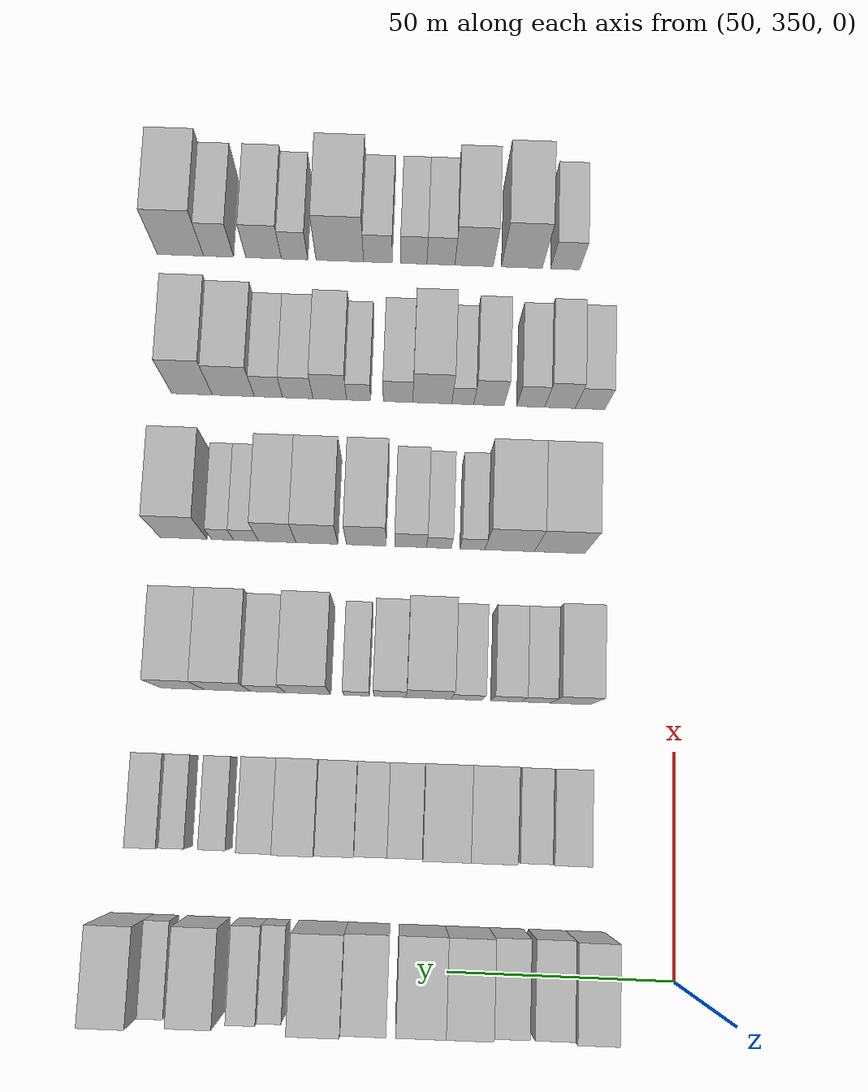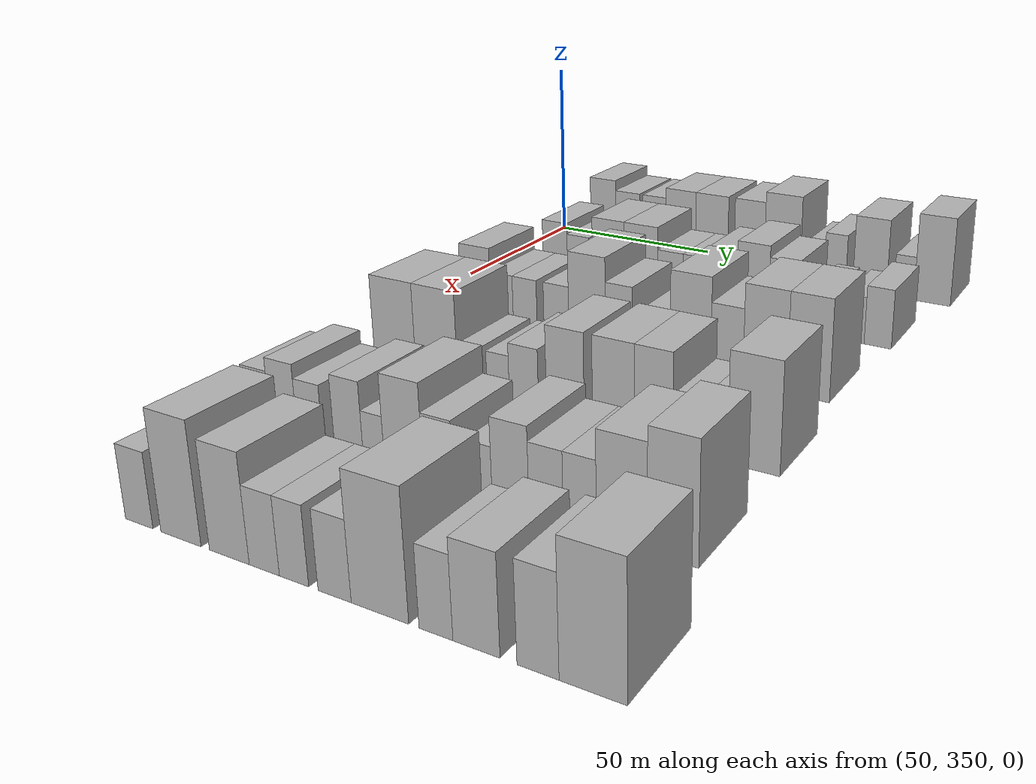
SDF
<sdf version="1.6">
 <world name="default">
  <model name="building_105">
   <static>1</static>
   <pose>50.0000 369.9335 0 0.000000 0.000000 0.000000</pose>
   <link name="link">
    <pose>0 0 10.50 0 0 0</pose>
    <collision name="collision"><geometry><box><size>20.0000 8.6102 21.0000</size></box></geometry></collision>
    <visual name="visual">
     <cast_shadows>0</cast_shadows>
     <geometry><box><size>20.0000 8.6102 21.0000</size></box></geometry>
     <material>
      <script>
       <uri>model://HANNAS_wall/materials/scripts</uri>
       <uri>model://HANNAS_wall/materials/textures</uri>
       <name>vrc/HANNAS_wall</name>
      </script>
     </material>
    </visual>
   </link>
  </model>
  <model name="building_106">
   <static>1</static>
   <pose>50.0000 378.3819 0 0.000000 0.000000 0.000000</pose>
   <link name="link">
    <pose>0 0 9.00 0 0 0</pose>
    <collision name="collision"><geometry><box><size>20.0000 8.2867 18.0000</size></box></geometry></collision>
    <visual name="visual">
     <cast_shadows>0</cast_shadows>
     <geometry><box><size>20.0000 8.2867 18.0000</size></box></geometry>
     <material>
      <script>
       <uri>model://HANNAS_wall/materials/scripts</uri>
       <uri>model://HANNAS_wall/materials/textures</uri>
       <name>vrc/HANNAS_wall</name>
      </script>
     </material>
    </visual>
   </link>
  </model>
  <model name="building_107">
   <static>1</static>
   <pose>50.0000 387.3120 0 0.000000 0.000000 0.000000</pose>
   <link name="link">
    <pose>0 0 9.00 0 0 0</pose>
    <collision name="collision"><geometry><box><size>20.0000 7.5735 18.0000</size></box></geometry></collision>
    <visual name="visual">
     <cast_shadows>0</cast_shadows>
     <geometry><box><size>20.0000 7.5735 18.0000</size></box></geometry>
     <material>
      <script>
       <uri>model://HANNAS_wall/materials/scripts</uri>
       <uri>model://HANNAS_wall/materials/textures</uri>
       <name>vrc/HANNAS_wall</name>
      </script>
     </material>
    </visual>
   </link>
  </model>
  <model name="building_108">
   <static>1</static>
   <pose>50.0000 395.9540 0 0.000000 0.000000 0.000000</pose>
   <link name="link">
    <pose>0 0 10.50 0 0 0</pose>
    <collision name="collision"><geometry><box><size>20.0000 9.7106 21.0000</size></box></geometry></collision>
    <visual name="visual">
     <cast_shadows>0</cast_shadows>
     <geometry><box><size>20.0000 9.7106 21.0000</size></box></geometry>
     <material>
      <script>
       <uri>model://HANNAS_wall/materials/scripts</uri>
       <uri>model://HANNAS_wall/materials/textures</uri>
       <name>vrc/HANNAS_wall</name>
      </script>
     </material>
    </visual>
   </link>
  </model>
  <model name="building_109">
   <static>1</static>
   <pose>50.0000 405.9166 0 0.000000 0.000000 0.000000</pose>
   <link name="link">
    <pose>0 0 10.50 0 0 0</pose>
    <collision name="collision"><geometry><box><size>20.0000 10.2146 21.0000</size></box></geometry></collision>
    <visual name="visual">
     <cast_shadows>0</cast_shadows>
     <geometry><box><size>20.0000 10.2146 21.0000</size></box></geometry>
     <material>
      <script>
       <uri>model://HANNAS_wall/materials/scripts</uri>
       <uri>model://HANNAS_wall/materials/textures</uri>
       <name>vrc/HANNAS_wall</name>
      </script>
     </material>
    </visual>
   </link>
  </model>
  <model name="building_110">
   <static>1</static>
   <pose>50.0000 417.6677 0 0.000000 0.000000 0.000000</pose>
   <link name="link">
    <pose>0 0 10.50 0 0 0</pose>
    <collision name="collision"><geometry><box><size>20.0000 9.2874 21.0000</size></box></geometry></collision>
    <visual name="visual">
     <cast_shadows>0</cast_shadows>
     <geometry><box><size>20.0000 9.2874 21.0000</size></box></geometry>
     <material>
      <script>
       <uri>model://HANNAS_wall/materials/scripts</uri>
       <uri>model://HANNAS_wall/materials/textures</uri>
       <name>vrc/HANNAS_wall</name>
      </script>
     </material>
    </visual>
   </link>
  </model>
  <model name="building_111">
   <static>1</static>
   <pose>50.0000 427.6856 0 0.000000 0.000000 0.000000</pose>
   <link name="link">
    <pose>0 0 12.00 0 0 0</pose>
    <collision name="collision"><geometry><box><size>20.0000 10.7485 24.0000</size></box></geometry></collision>
    <visual name="visual">
     <cast_shadows>0</cast_shadows>
     <geometry><box><size>20.0000 10.7485 24.0000</size></box></geometry>
     <material>
      <script>
       <uri>model://HANNAS_wall/materials/scripts</uri>
       <uri>model://HANNAS_wall/materials/textures</uri>
       <name>vrc/HANNAS_wall</name>
      </script>
     </material>
    </visual>
   </link>
  </model>
  <model name="building_112">
   <static>1</static>
   <pose>50.0000 437.6228 0 0.000000 0.000000 0.000000</pose>
   <link name="link">
    <pose>0 0 6.00 0 0 0</pose>
    <collision name="collision"><geometry><box><size>20.0000 5.1258 12.0000</size></box></geometry></collision>
    <visual name="visual">
     <cast_shadows>0</cast_shadows>
     <geometry><box><size>20.0000 5.1258 12.0000</size></box></geometry>
     <material>
      <script>
       <uri>model://HANNAS_wall/materials/scripts</uri>
       <uri>model://HANNAS_wall/materials/textures</uri>
       <name>vrc/HANNAS_wall</name>
      </script>
     </material>
    </visual>
   </link>
  </model>
  <model name="building_113">
   <static>1</static>
   <pose>50.0000 443.2947 0 0.000000 0.000000 0.000000</pose>
   <link name="link">
    <pose>0 0 7.50 0 0 0</pose>
    <collision name="collision"><geometry><box><size>20.0000 6.2182 15.0000</size></box></geometry></collision>
    <visual name="visual">
     <cast_shadows>0</cast_shadows>
     <geometry><box><size>20.0000 6.2182 15.0000</size></box></geometry>
     <material>
      <script>
       <uri>model://HANNAS_wall/materials/scripts</uri>
       <uri>model://HANNAS_wall/materials/textures</uri>
       <name>vrc/HANNAS_wall</name>
      </script>
     </material>
    </visual>
   </link>
  </model>
  <model name="building_114">
   <static>1</static>
   <pose>50.0000 453.1351 0 0.000000 0.000000 0.000000</pose>
   <link name="link">
    <pose>0 0 10.50 0 0 0</pose>
    <collision name="collision"><geometry><box><size>20.0000 9.4625 21.0000</size></box></geometry></collision>
    <visual name="visual">
     <cast_shadows>0</cast_shadows>
     <geometry><box><size>20.0000 9.4625 21.0000</size></box></geometry>
     <material>
      <script>
       <uri>model://HANNAS_wall/materials/scripts</uri>
       <uri>model://HANNAS_wall/materials/textures</uri>
       <name>vrc/HANNAS_wall</name>
      </script>
     </material>
    </visual>
   </link>
  </model>
  <model name="building_115">
   <static>1</static>
   <pose>50.0000 462.6185 0 0.000000 0.000000 0.000000</pose>
   <link name="link">
    <pose>0 0 6.00 0 0 0</pose>
    <collision name="collision"><geometry><box><size>20.0000 5.5043 12.0000</size></box></geometry></collision>
    <visual name="visual">
     <cast_shadows>0</cast_shadows>
     <geometry><box><size>20.0000 5.5043 12.0000</size></box></geometry>
     <material>
      <script>
       <uri>model://HANNAS_wall/materials/scripts</uri>
       <uri>model://HANNAS_wall/materials/textures</uri>
       <name>vrc/HANNAS_wall</name>
      </script>
     </material>
    </visual>
   </link>
  </model>
  <model name="building_116">
   <static>1</static>
   <pose>50.0000 470.2363 0 0.000000 0.000000 0.000000</pose>
   <link name="link">
    <pose>0 0 12.00 0 0 0</pose>
    <collision name="collision"><geometry><box><size>20.0000 9.7314 24.0000</size></box></geometry></collision>
    <visual name="visual">
     <cast_shadows>0</cast_shadows>
     <geometry><box><size>20.0000 9.7314 24.0000</size></box></geometry>
     <material>
      <script>
       <uri>model://HANNAS_wall/materials/scripts</uri>
       <uri>model://HANNAS_wall/materials/textures</uri>
       <name>vrc/HANNAS_wall</name>
      </script>
     </material>
    </visual>
   </link>
  </model>
  <model name="building_230">
   <static>1</static>
   <pose>85.0000 375.1000 0 0.000000 0.000000 0.000000</pose>
   <link name="link">
    <pose>0 0 9.00 0 0 0</pose>
    <collision name="collision"><geometry><box><size>20.0000 7.8671 18.0000</size></box></geometry></collision>
    <visual name="visual">
     <cast_shadows>0</cast_shadows>
     <geometry><box><size>20.0000 7.8671 18.0000</size></box></geometry>
     <material>
      <script>
       <uri>model://HANNAS_wall/materials/scripts</uri>
       <uri>model://HANNAS_wall/materials/textures</uri>
       <name>vrc/HANNAS_wall</name>
      </script>
     </material>
    </visual>
   </link>
  </model>
  <model name="building_231">
   <static>1</static>
   <pose>85.0000 382.5008 0 0.000000 0.000000 0.000000</pose>
   <link name="link">
    <pose>0 0 7.50 0 0 0</pose>
    <collision name="collision"><geometry><box><size>20.0000 6.9344 15.0000</size></box></geometry></collision>
    <visual name="visual">
     <cast_shadows>0</cast_shadows>
     <geometry><box><size>20.0000 6.9344 15.0000</size></box></geometry>
     <material>
      <script>
       <uri>model://HANNAS_wall/materials/scripts</uri>
       <uri>model://HANNAS_wall/materials/textures</uri>
       <name>vrc/HANNAS_wall</name>
      </script>
     </material>
    </visual>
   </link>
  </model>
  <model name="building_232">
   <static>1</static>
   <pose>85.0000 391.8613 0 0.000000 0.000000 0.000000</pose>
   <link name="link">
    <pose>0 0 10.50 0 0 0</pose>
    <collision name="collision"><geometry><box><size>20.0000 9.7867 21.0000</size></box></geometry></collision>
    <visual name="visual">
     <cast_shadows>0</cast_shadows>
     <geometry><box><size>20.0000 9.7867 21.0000</size></box></geometry>
     <material>
      <script>
       <uri>model://HANNAS_wall/materials/scripts</uri>
       <uri>model://HANNAS_wall/materials/textures</uri>
       <name>vrc/HANNAS_wall</name>
      </script>
     </material>
    </visual>
   </link>
  </model>
  <model name="building_233">
   <static>1</static>
   <pose>85.0000 401.7464 0 0.000000 0.000000 0.000000</pose>
   <link name="link">
    <pose>0 0 10.50 0 0 0</pose>
    <collision name="collision"><geometry><box><size>20.0000 9.9835 21.0000</size></box></geometry></collision>
    <visual name="visual">
     <cast_shadows>0</cast_shadows>
     <geometry><box><size>20.0000 9.9835 21.0000</size></box></geometry>
     <material>
      <script>
       <uri>model://HANNAS_wall/materials/scripts</uri>
       <uri>model://HANNAS_wall/materials/textures</uri>
       <name>vrc/HANNAS_wall</name>
      </script>
     </material>
    </visual>
   </link>
  </model>
  <model name="building_234">
   <static>1</static>
   <pose>85.0000 410.4864 0 0.000000 0.000000 0.000000</pose>
   <link name="link">
    <pose>0 0 7.50 0 0 0</pose>
    <collision name="collision"><geometry><box><size>20.0000 7.4966 15.0000</size></box></geometry></collision>
    <visual name="visual">
     <cast_shadows>0</cast_shadows>
     <geometry><box><size>20.0000 7.4966 15.0000</size></box></geometry>
     <material>
      <script>
       <uri>model://HANNAS_wall/materials/scripts</uri>
       <uri>model://HANNAS_wall/materials/textures</uri>
       <name>vrc/HANNAS_wall</name>
      </script>
     </material>
    </visual>
   </link>
  </model>
  <model name="building_235">
   <static>1</static>
   <pose>85.0000 417.7407 0 0.000000 0.000000 0.000000</pose>
   <link name="link">
    <pose>0 0 7.50 0 0 0</pose>
    <collision name="collision"><geometry><box><size>20.0000 7.0119 15.0000</size></box></geometry></collision>
    <visual name="visual">
     <cast_shadows>0</cast_shadows>
     <geometry><box><size>20.0000 7.0119 15.0000</size></box></geometry>
     <material>
      <script>
       <uri>model://HANNAS_wall/materials/scripts</uri>
       <uri>model://HANNAS_wall/materials/textures</uri>
       <name>vrc/HANNAS_wall</name>
      </script>
     </material>
    </visual>
   </link>
  </model>
  <model name="building_236">
   <static>1</static>
   <pose>85.0000 425.3712 0 0.000000 0.000000 0.000000</pose>
   <link name="link">
    <pose>0 0 9.00 0 0 0</pose>
    <collision name="collision"><geometry><box><size>20.0000 8.2490 18.0000</size></box></geometry></collision>
    <visual name="visual">
     <cast_shadows>0</cast_shadows>
     <geometry><box><size>20.0000 8.2490 18.0000</size></box></geometry>
     <material>
      <script>
       <uri>model://HANNAS_wall/materials/scripts</uri>
       <uri>model://HANNAS_wall/materials/textures</uri>
       <name>vrc/HANNAS_wall</name>
      </script>
     </material>
    </visual>
   </link>
  </model>
  <model name="building_237">
   <static>1</static>
   <pose>85.0000 433.8720 0 0.000000 0.000000 0.000000</pose>
   <link name="link">
    <pose>0 0 10.50 0 0 0</pose>
    <collision name="collision"><geometry><box><size>20.0000 8.7527 21.0000</size></box></geometry></collision>
    <visual name="visual">
     <cast_shadows>0</cast_shadows>
     <geometry><box><size>20.0000 8.7527 21.0000</size></box></geometry>
     <material>
      <script>
       <uri>model://HANNAS_wall/materials/scripts</uri>
       <uri>model://HANNAS_wall/materials/textures</uri>
       <name>vrc/HANNAS_wall</name>
      </script>
     </material>
    </visual>
   </link>
  </model>
  <model name="building_238">
   <static>1</static>
   <pose>85.0000 442.1000 0 0.000000 0.000000 0.000000</pose>
   <link name="link">
    <pose>0 0 9.00 0 0 0</pose>
    <collision name="collision"><geometry><box><size>20.0000 7.7033 18.0000</size></box></geometry></collision>
    <visual name="visual">
     <cast_shadows>0</cast_shadows>
     <geometry><box><size>20.0000 7.7033 18.0000</size></box></geometry>
     <material>
      <script>
       <uri>model://HANNAS_wall/materials/scripts</uri>
       <uri>model://HANNAS_wall/materials/textures</uri>
       <name>vrc/HANNAS_wall</name>
      </script>
     </material>
    </visual>
   </link>
  </model>
  <model name="building_239">
   <static>1</static>
   <pose>85.0000 451.9021 0 0.000000 0.000000 0.000000</pose>
   <link name="link">
    <pose>0 0 6.00 0 0 0</pose>
    <collision name="collision"><geometry><box><size>20.0000 5.9009 12.0000</size></box></geometry></collision>
    <visual name="visual">
     <cast_shadows>0</cast_shadows>
     <geometry><box><size>20.0000 5.9009 12.0000</size></box></geometry>
     <material>
      <script>
       <uri>model://HANNAS_wall/materials/scripts</uri>
       <uri>model://HANNAS_wall/materials/textures</uri>
       <name>vrc/HANNAS_wall</name>
      </script>
     </material>
    </visual>
   </link>
  </model>
  <model name="building_240">
   <static>1</static>
   <pose>85.0000 460.5835 0 0.000000 0.000000 0.000000</pose>
   <link name="link">
    <pose>0 0 6.00 0 0 0</pose>
    <collision name="collision"><geometry><box><size>20.0000 5.4618 12.0000</size></box></geometry></collision>
    <visual name="visual">
     <cast_shadows>0</cast_shadows>
     <geometry><box><size>20.0000 5.4618 12.0000</size></box></geometry>
     <material>
      <script>
       <uri>model://HANNAS_wall/materials/scripts</uri>
       <uri>model://HANNAS_wall/materials/textures</uri>
       <name>vrc/HANNAS_wall</name>
      </script>
     </material>
    </visual>
   </link>
  </model>
  <model name="building_241">
   <static>1</static>
   <pose>85.0000 466.6958 0 0.000000 0.000000 0.000000</pose>
   <link name="link">
    <pose>0 0 7.50 0 0 0</pose>
    <collision name="collision"><geometry><box><size>20.0000 6.7629 15.0000</size></box></geometry></collision>
    <visual name="visual">
     <cast_shadows>0</cast_shadows>
     <geometry><box><size>20.0000 6.7629 15.0000</size></box></geometry>
     <material>
      <script>
       <uri>model://HANNAS_wall/materials/scripts</uri>
       <uri>model://HANNAS_wall/materials/textures</uri>
       <name>vrc/HANNAS_wall</name>
      </script>
     </material>
    </visual>
   </link>
  </model>
  <model name="building_359">
   <static>1</static>
   <pose>120.0000 373.8123 0 0.000000 0.000000 0.000000</pose>
   <link name="link">
    <pose>0 0 10.50 0 0 0</pose>
    <collision name="collision"><geometry><box><size>20.0000 9.1150 21.0000</size></box></geometry></collision>
    <visual name="visual">
     <cast_shadows>0</cast_shadows>
     <geometry><box><size>20.0000 9.1150 21.0000</size></box></geometry>
     <material>
      <script>
       <uri>model://HANNAS_wall/materials/scripts</uri>
       <uri>model://HANNAS_wall/materials/textures</uri>
       <name>vrc/HANNAS_wall</name>
      </script>
     </material>
    </visual>
   </link>
  </model>
  <model name="building_360">
   <static>1</static>
   <pose>120.0000 381.6951 0 0.000000 0.000000 0.000000</pose>
   <link name="link">
    <pose>0 0 7.50 0 0 0</pose>
    <collision name="collision"><geometry><box><size>20.0000 6.6507 15.0000</size></box></geometry></collision>
    <visual name="visual">
     <cast_shadows>0</cast_shadows>
     <geometry><box><size>20.0000 6.6507 15.0000</size></box></geometry>
     <material>
      <script>
       <uri>model://HANNAS_wall/materials/scripts</uri>
       <uri>model://HANNAS_wall/materials/textures</uri>
       <name>vrc/HANNAS_wall</name>
      </script>
     </material>
    </visual>
   </link>
  </model>
  <model name="building_361">
   <static>1</static>
   <pose>120.0000 388.5197 0 0.000000 0.000000 0.000000</pose>
   <link name="link">
    <pose>0 0 7.50 0 0 0</pose>
    <collision name="collision"><geometry><box><size>20.0000 6.9985 15.0000</size></box></geometry></collision>
    <visual name="visual">
     <cast_shadows>0</cast_shadows>
     <geometry><box><size>20.0000 6.9985 15.0000</size></box></geometry>
     <material>
      <script>
       <uri>model://HANNAS_wall/materials/scripts</uri>
       <uri>model://HANNAS_wall/materials/textures</uri>
       <name>vrc/HANNAS_wall</name>
      </script>
     </material>
    </visual>
   </link>
  </model>
  <model name="building_362">
   <static>1</static>
   <pose>120.0000 397.5666 0 0.000000 0.000000 0.000000</pose>
   <link name="link">
    <pose>0 0 7.50 0 0 0</pose>
    <collision name="collision"><geometry><box><size>20.0000 7.0953 15.0000</size></box></geometry></collision>
    <visual name="visual">
     <cast_shadows>0</cast_shadows>
     <geometry><box><size>20.0000 7.0953 15.0000</size></box></geometry>
     <material>
      <script>
       <uri>model://HANNAS_wall/materials/scripts</uri>
       <uri>model://HANNAS_wall/materials/textures</uri>
       <name>vrc/HANNAS_wall</name>
      </script>
     </material>
    </visual>
   </link>
  </model>
  <model name="building_363">
   <static>1</static>
   <pose>120.0000 406.1942 0 0.000000 0.000000 0.000000</pose>
   <link name="link">
    <pose>0 0 12.00 0 0 0</pose>
    <collision name="collision"><geometry><box><size>20.0000 10.1600 24.0000</size></box></geometry></collision>
    <visual name="visual">
     <cast_shadows>0</cast_shadows>
     <geometry><box><size>20.0000 10.1600 24.0000</size></box></geometry>
     <material>
      <script>
       <uri>model://HANNAS_wall/materials/scripts</uri>
       <uri>model://HANNAS_wall/materials/textures</uri>
       <name>vrc/HANNAS_wall</name>
      </script>
     </material>
    </visual>
   </link>
  </model>
  <model name="building_364">
   <static>1</static>
   <pose>120.0000 414.9389 0 0.000000 0.000000 0.000000</pose>
   <link name="link">
    <pose>0 0 9.00 0 0 0</pose>
    <collision name="collision"><geometry><box><size>20.0000 7.3293 18.0000</size></box></geometry></collision>
    <visual name="visual">
     <cast_shadows>0</cast_shadows>
     <geometry><box><size>20.0000 7.3293 18.0000</size></box></geometry>
     <material>
      <script>
       <uri>model://HANNAS_wall/materials/scripts</uri>
       <uri>model://HANNAS_wall/materials/textures</uri>
       <name>vrc/HANNAS_wall</name>
      </script>
     </material>
    </visual>
   </link>
  </model>
  <model name="building_365">
   <static>1</static>
   <pose>120.0000 422.5329 0 0.000000 0.000000 0.000000</pose>
   <link name="link">
    <pose>0 0 6.00 0 0 0</pose>
    <collision name="collision"><geometry><box><size>20.0000 5.8589 12.0000</size></box></geometry></collision>
    <visual name="visual">
     <cast_shadows>0</cast_shadows>
     <geometry><box><size>20.0000 5.8589 12.0000</size></box></geometry>
     <material>
      <script>
       <uri>model://HANNAS_wall/materials/scripts</uri>
       <uri>model://HANNAS_wall/materials/textures</uri>
       <name>vrc/HANNAS_wall</name>
      </script>
     </material>
    </visual>
   </link>
  </model>
  <model name="building_366">
   <static>1</static>
   <pose>120.0000 433.6218 0 0.000000 0.000000 0.000000</pose>
   <link name="link">
    <pose>0 0 12.00 0 0 0</pose>
    <collision name="collision"><geometry><box><size>20.0000 10.3188 24.0000</size></box></geometry></collision>
    <visual name="visual">
     <cast_shadows>0</cast_shadows>
     <geometry><box><size>20.0000 10.3188 24.0000</size></box></geometry>
     <material>
      <script>
       <uri>model://HANNAS_wall/materials/scripts</uri>
       <uri>model://HANNAS_wall/materials/textures</uri>
       <name>vrc/HANNAS_wall</name>
      </script>
     </material>
    </visual>
   </link>
  </model>
  <model name="building_367">
   <static>1</static>
   <pose>120.0000 442.7735 0 0.000000 0.000000 0.000000</pose>
   <link name="link">
    <pose>0 0 9.00 0 0 0</pose>
    <collision name="collision"><geometry><box><size>20.0000 7.9846 18.0000</size></box></geometry></collision>
    <visual name="visual">
     <cast_shadows>0</cast_shadows>
     <geometry><box><size>20.0000 7.9846 18.0000</size></box></geometry>
     <material>
      <script>
       <uri>model://HANNAS_wall/materials/scripts</uri>
       <uri>model://HANNAS_wall/materials/textures</uri>
       <name>vrc/HANNAS_wall</name>
      </script>
     </material>
    </visual>
   </link>
  </model>
  <model name="building_368">
   <static>1</static>
   <pose>120.0000 452.0443 0 0.000000 0.000000 0.000000</pose>
   <link name="link">
    <pose>0 0 12.00 0 0 0</pose>
    <collision name="collision"><geometry><box><size>20.0000 10.5570 24.0000</size></box></geometry></collision>
    <visual name="visual">
     <cast_shadows>0</cast_shadows>
     <geometry><box><size>20.0000 10.5570 24.0000</size></box></geometry>
     <material>
      <script>
       <uri>model://HANNAS_wall/materials/scripts</uri>
       <uri>model://HANNAS_wall/materials/textures</uri>
       <name>vrc/HANNAS_wall</name>
      </script>
     </material>
    </visual>
   </link>
  </model>
  <model name="building_369">
   <static>1</static>
   <pose>120.0000 462.2452 0 0.000000 0.000000 0.000000</pose>
   <link name="link">
    <pose>0 0 12.00 0 0 0</pose>
    <collision name="collision"><geometry><box><size>20.0000 9.8447 24.0000</size></box></geometry></collision>
    <visual name="visual">
     <cast_shadows>0</cast_shadows>
     <geometry><box><size>20.0000 9.8447 24.0000</size></box></geometry>
     <material>
      <script>
       <uri>model://HANNAS_wall/materials/scripts</uri>
       <uri>model://HANNAS_wall/materials/textures</uri>
       <name>vrc/HANNAS_wall</name>
      </script>
     </material>
    </visual>
   </link>
  </model>
  <model name="building_488">
   <static>1</static>
   <pose>155.0000 376.8413 0 0.000000 0.000000 0.000000</pose>
   <link name="link">
    <pose>0 0 12.00 0 0 0</pose>
    <collision name="collision"><geometry><box><size>20.0000 11.7785 24.0000</size></box></geometry></collision>
    <visual name="visual">
     <cast_shadows>0</cast_shadows>
     <geometry><box><size>20.0000 11.7785 24.0000</size></box></geometry>
     <material>
      <script>
       <uri>model://HANNAS_wall/materials/scripts</uri>
       <uri>model://HANNAS_wall/materials/textures</uri>
       <name>vrc/HANNAS_wall</name>
      </script>
     </material>
    </visual>
   </link>
  </model>
  <model name="building_489">
   <static>1</static>
   <pose>155.0000 388.5009 0 0.000000 0.000000 0.000000</pose>
   <link name="link">
    <pose>0 0 12.00 0 0 0</pose>
    <collision name="collision"><geometry><box><size>20.0000 11.5407 24.0000</size></box></geometry></collision>
    <visual name="visual">
     <cast_shadows>0</cast_shadows>
     <geometry><box><size>20.0000 11.5407 24.0000</size></box></geometry>
     <material>
      <script>
       <uri>model://HANNAS_wall/materials/scripts</uri>
       <uri>model://HANNAS_wall/materials/textures</uri>
       <name>vrc/HANNAS_wall</name>
      </script>
     </material>
    </visual>
   </link>
  </model>
  <model name="building_490">
   <static>1</static>
   <pose>155.0000 397.1699 0 0.000000 0.000000 0.000000</pose>
   <link name="link">
    <pose>0 0 6.00 0 0 0</pose>
    <collision name="collision"><geometry><box><size>20.0000 5.7972 12.0000</size></box></geometry></collision>
    <visual name="visual">
     <cast_shadows>0</cast_shadows>
     <geometry><box><size>20.0000 5.7972 12.0000</size></box></geometry>
     <material>
      <script>
       <uri>model://HANNAS_wall/materials/scripts</uri>
       <uri>model://HANNAS_wall/materials/textures</uri>
       <name>vrc/HANNAS_wall</name>
      </script>
     </material>
    </visual>
   </link>
  </model>
  <model name="building_491">
   <static>1</static>
   <pose>155.0000 404.9587 0 0.000000 0.000000 0.000000</pose>
   <link name="link">
    <pose>0 0 6.00 0 0 0</pose>
    <collision name="collision"><geometry><box><size>20.0000 5.7803 12.0000</size></box></geometry></collision>
    <visual name="visual">
     <cast_shadows>0</cast_shadows>
     <geometry><box><size>20.0000 5.7803 12.0000</size></box></geometry>
     <material>
      <script>
       <uri>model://HANNAS_wall/materials/scripts</uri>
       <uri>model://HANNAS_wall/materials/textures</uri>
       <name>vrc/HANNAS_wall</name>
      </script>
     </material>
    </visual>
   </link>
  </model>
  <model name="building_492">
   <static>1</static>
   <pose>155.0000 411.5589 0 0.000000 0.000000 0.000000</pose>
   <link name="link">
    <pose>0 0 7.50 0 0 0</pose>
    <collision name="collision"><geometry><box><size>20.0000 7.4202 15.0000</size></box></geometry></collision>
    <visual name="visual">
     <cast_shadows>0</cast_shadows>
     <geometry><box><size>20.0000 7.4202 15.0000</size></box></geometry>
     <material>
      <script>
       <uri>model://HANNAS_wall/materials/scripts</uri>
       <uri>model://HANNAS_wall/materials/textures</uri>
       <name>vrc/HANNAS_wall</name>
      </script>
     </material>
    </visual>
   </link>
  </model>
  <model name="building_493">
   <static>1</static>
   <pose>155.0000 421.8836 0 0.000000 0.000000 0.000000</pose>
   <link name="link">
    <pose>0 0 10.50 0 0 0</pose>
    <collision name="collision"><geometry><box><size>20.0000 9.2291 21.0000</size></box></geometry></collision>
    <visual name="visual">
     <cast_shadows>0</cast_shadows>
     <geometry><box><size>20.0000 9.2291 21.0000</size></box></geometry>
     <material>
      <script>
       <uri>model://HANNAS_wall/materials/scripts</uri>
       <uri>model://HANNAS_wall/materials/textures</uri>
       <name>vrc/HANNAS_wall</name>
      </script>
     </material>
    </visual>
   </link>
  </model>
  <model name="building_494">
   <static>1</static>
   <pose>155.0000 433.3982 0 0.000000 0.000000 0.000000</pose>
   <link name="link">
    <pose>0 0 10.50 0 0 0</pose>
    <collision name="collision"><geometry><box><size>20.0000 9.8001 21.0000</size></box></geometry></collision>
    <visual name="visual">
     <cast_shadows>0</cast_shadows>
     <geometry><box><size>20.0000 9.8001 21.0000</size></box></geometry>
     <material>
      <script>
       <uri>model://HANNAS_wall/materials/scripts</uri>
       <uri>model://HANNAS_wall/materials/textures</uri>
       <name>vrc/HANNAS_wall</name>
      </script>
     </material>
    </visual>
   </link>
  </model>
  <model name="building_495">
   <static>1</static>
   <pose>155.0000 442.6768 0 0.000000 0.000000 0.000000</pose>
   <link name="link">
    <pose>0 0 10.50 0 0 0</pose>
    <collision name="collision"><geometry><box><size>20.0000 8.7570 21.0000</size></box></geometry></collision>
    <visual name="visual">
     <cast_shadows>0</cast_shadows>
     <geometry><box><size>20.0000 8.7570 21.0000</size></box></geometry>
     <material>
      <script>
       <uri>model://HANNAS_wall/materials/scripts</uri>
       <uri>model://HANNAS_wall/materials/textures</uri>
       <name>vrc/HANNAS_wall</name>
      </script>
     </material>
    </visual>
   </link>
  </model>
  <model name="building_496">
   <static>1</static>
   <pose>155.0000 449.9372 0 0.000000 0.000000 0.000000</pose>
   <link name="link">
    <pose>0 0 6.00 0 0 0</pose>
    <collision name="collision"><geometry><box><size>20.0000 5.7638 12.0000</size></box></geometry></collision>
    <visual name="visual">
     <cast_shadows>0</cast_shadows>
     <geometry><box><size>20.0000 5.7638 12.0000</size></box></geometry>
     <material>
      <script>
       <uri>model://HANNAS_wall/materials/scripts</uri>
       <uri>model://HANNAS_wall/materials/textures</uri>
       <name>vrc/HANNAS_wall</name>
      </script>
     </material>
    </visual>
   </link>
  </model>
  <model name="building_497">
   <static>1</static>
   <pose>155.0000 455.3977 0 0.000000 0.000000 0.000000</pose>
   <link name="link">
    <pose>0 0 6.00 0 0 0</pose>
    <collision name="collision"><geometry><box><size>20.0000 5.1572 12.0000</size></box></geometry></collision>
    <visual name="visual">
     <cast_shadows>0</cast_shadows>
     <geometry><box><size>20.0000 5.1572 12.0000</size></box></geometry>
     <material>
      <script>
       <uri>model://HANNAS_wall/materials/scripts</uri>
       <uri>model://HANNAS_wall/materials/textures</uri>
       <name>vrc/HANNAS_wall</name>
      </script>
     </material>
    </visual>
   </link>
  </model>
  <model name="building_498">
   <static>1</static>
   <pose>155.0000 464.4772 0 0.000000 0.000000 0.000000</pose>
   <link name="link">
    <pose>0 0 12.00 0 0 0</pose>
    <collision name="collision"><geometry><box><size>20.0000 11.0017 24.0000</size></box></geometry></collision>
    <visual name="visual">
     <cast_shadows>0</cast_shadows>
     <geometry><box><size>20.0000 11.0017 24.0000</size></box></geometry>
     <material>
      <script>
       <uri>model://HANNAS_wall/materials/scripts</uri>
       <uri>model://HANNAS_wall/materials/textures</uri>
       <name>vrc/HANNAS_wall</name>
      </script>
     </material>
    </visual>
   </link>
  </model>
  <model name="building_612">
   <static>1</static>
   <pose>190.0000 370.1703 0 0.000000 0.000000 0.000000</pose>
   <link name="link">
    <pose>0 0 7.50 0 0 0</pose>
    <collision name="collision"><geometry><box><size>20.0000 7.0514 15.0000</size></box></geometry></collision>
    <visual name="visual">
     <cast_shadows>0</cast_shadows>
     <geometry><box><size>20.0000 7.0514 15.0000</size></box></geometry>
     <material>
      <script>
       <uri>model://HANNAS_wall/materials/scripts</uri>
       <uri>model://HANNAS_wall/materials/textures</uri>
       <name>vrc/HANNAS_wall</name>
      </script>
     </material>
    </visual>
   </link>
  </model>
  <model name="building_613">
   <static>1</static>
   <pose>190.0000 377.3264 0 0.000000 0.000000 0.000000</pose>
   <link name="link">
    <pose>0 0 9.00 0 0 0</pose>
    <collision name="collision"><geometry><box><size>20.0000 7.2608 18.0000</size></box></geometry></collision>
    <visual name="visual">
     <cast_shadows>0</cast_shadows>
     <geometry><box><size>20.0000 7.2608 18.0000</size></box></geometry>
     <material>
      <script>
       <uri>model://HANNAS_wall/materials/scripts</uri>
       <uri>model://HANNAS_wall/materials/textures</uri>
       <name>vrc/HANNAS_wall</name>
      </script>
     </material>
    </visual>
   </link>
  </model>
  <model name="building_614">
   <static>1</static>
   <pose>190.0000 384.2779 0 0.000000 0.000000 0.000000</pose>
   <link name="link">
    <pose>0 0 7.50 0 0 0</pose>
    <collision name="collision"><geometry><box><size>20.0000 6.6423 15.0000</size></box></geometry></collision>
    <visual name="visual">
     <cast_shadows>0</cast_shadows>
     <geometry><box><size>20.0000 6.6423 15.0000</size></box></geometry>
     <material>
      <script>
       <uri>model://HANNAS_wall/materials/scripts</uri>
       <uri>model://HANNAS_wall/materials/textures</uri>
       <name>vrc/HANNAS_wall</name>
      </script>
     </material>
    </visual>
   </link>
  </model>
  <model name="building_615">
   <static>1</static>
   <pose>190.0000 394.2117 0 0.000000 0.000000 0.000000</pose>
   <link name="link">
    <pose>0 0 9.00 0 0 0</pose>
    <collision name="collision"><geometry><box><size>20.0000 7.2253 18.0000</size></box></geometry></collision>
    <visual name="visual">
     <cast_shadows>0</cast_shadows>
     <geometry><box><size>20.0000 7.2253 18.0000</size></box></geometry>
     <material>
      <script>
       <uri>model://HANNAS_wall/materials/scripts</uri>
       <uri>model://HANNAS_wall/materials/textures</uri>
       <name>vrc/HANNAS_wall</name>
      </script>
     </material>
    </visual>
   </link>
  </model>
  <model name="building_616">
   <static>1</static>
   <pose>190.0000 400.4393 0 0.000000 0.000000 0.000000</pose>
   <link name="link">
    <pose>0 0 6.00 0 0 0</pose>
    <collision name="collision"><geometry><box><size>20.0000 5.2299 12.0000</size></box></geometry></collision>
    <visual name="visual">
     <cast_shadows>0</cast_shadows>
     <geometry><box><size>20.0000 5.2299 12.0000</size></box></geometry>
     <material>
      <script>
       <uri>model://HANNAS_wall/materials/scripts</uri>
       <uri>model://HANNAS_wall/materials/textures</uri>
       <name>vrc/HANNAS_wall</name>
      </script>
     </material>
    </visual>
   </link>
  </model>
  <model name="building_617">
   <static>1</static>
   <pose>190.0000 407.6977 0 0.000000 0.000000 0.000000</pose>
   <link name="link">
    <pose>0 0 10.50 0 0 0</pose>
    <collision name="collision"><geometry><box><size>20.0000 9.2868 21.0000</size></box></geometry></collision>
    <visual name="visual">
     <cast_shadows>0</cast_shadows>
     <geometry><box><size>20.0000 9.2868 21.0000</size></box></geometry>
     <material>
      <script>
       <uri>model://HANNAS_wall/materials/scripts</uri>
       <uri>model://HANNAS_wall/materials/textures</uri>
       <name>vrc/HANNAS_wall</name>
      </script>
     </material>
    </visual>
   </link>
  </model>
  <model name="building_618">
   <static>1</static>
   <pose>190.0000 415.8311 0 0.000000 0.000000 0.000000</pose>
   <link name="link">
    <pose>0 0 7.50 0 0 0</pose>
    <collision name="collision"><geometry><box><size>20.0000 6.9799 15.0000</size></box></geometry></collision>
    <visual name="visual">
     <cast_shadows>0</cast_shadows>
     <geometry><box><size>20.0000 6.9799 15.0000</size></box></geometry>
     <material>
      <script>
       <uri>model://HANNAS_wall/materials/scripts</uri>
       <uri>model://HANNAS_wall/materials/textures</uri>
       <name>vrc/HANNAS_wall</name>
      </script>
     </material>
    </visual>
   </link>
  </model>
  <model name="building_619">
   <static>1</static>
   <pose>190.0000 425.1897 0 0.000000 0.000000 0.000000</pose>
   <link name="link">
    <pose>0 0 6.00 0 0 0</pose>
    <collision name="collision"><geometry><box><size>20.0000 5.7373 12.0000</size></box></geometry></collision>
    <visual name="visual">
     <cast_shadows>0</cast_shadows>
     <geometry><box><size>20.0000 5.7373 12.0000</size></box></geometry>
     <material>
      <script>
       <uri>model://HANNAS_wall/materials/scripts</uri>
       <uri>model://HANNAS_wall/materials/textures</uri>
       <name>vrc/HANNAS_wall</name>
      </script>
     </material>
    </visual>
   </link>
  </model>
  <model name="building_620">
   <static>1</static>
   <pose>190.0000 432.0686 0 0.000000 0.000000 0.000000</pose>
   <link name="link">
    <pose>0 0 9.00 0 0 0</pose>
    <collision name="collision"><geometry><box><size>20.0000 8.0205 18.0000</size></box></geometry></collision>
    <visual name="visual">
     <cast_shadows>0</cast_shadows>
     <geometry><box><size>20.0000 8.0205 18.0000</size></box></geometry>
     <material>
      <script>
       <uri>model://HANNAS_wall/materials/scripts</uri>
       <uri>model://HANNAS_wall/materials/textures</uri>
       <name>vrc/HANNAS_wall</name>
      </script>
     </material>
    </visual>
   </link>
  </model>
  <model name="building_621">
   <static>1</static>
   <pose>190.0000 439.6800 0 0.000000 0.000000 0.000000</pose>
   <link name="link">
    <pose>0 0 7.50 0 0 0</pose>
    <collision name="collision"><geometry><box><size>20.0000 7.2023 15.0000</size></box></geometry></collision>
    <visual name="visual">
     <cast_shadows>0</cast_shadows>
     <geometry><box><size>20.0000 7.2023 15.0000</size></box></geometry>
     <material>
      <script>
       <uri>model://HANNAS_wall/materials/scripts</uri>
       <uri>model://HANNAS_wall/materials/textures</uri>
       <name>vrc/HANNAS_wall</name>
      </script>
     </material>
    </visual>
   </link>
  </model>
  <model name="building_622">
   <static>1</static>
   <pose>190.0000 446.6634 0 0.000000 0.000000 0.000000</pose>
   <link name="link">
    <pose>0 0 7.50 0 0 0</pose>
    <collision name="collision"><geometry><box><size>20.0000 6.7645 15.0000</size></box></geometry></collision>
    <visual name="visual">
     <cast_shadows>0</cast_shadows>
     <geometry><box><size>20.0000 6.7645 15.0000</size></box></geometry>
     <material>
      <script>
       <uri>model://HANNAS_wall/materials/scripts</uri>
       <uri>model://HANNAS_wall/materials/textures</uri>
       <name>vrc/HANNAS_wall</name>
      </script>
     </material>
    </visual>
   </link>
  </model>
  <model name="building_623">
   <static>1</static>
   <pose>190.0000 455.0349 0 0.000000 0.000000 0.000000</pose>
   <link name="link">
    <pose>0 0 10.50 0 0 0</pose>
    <collision name="collision"><geometry><box><size>20.0000 9.9785 21.0000</size></box></geometry></collision>
    <visual name="visual">
     <cast_shadows>0</cast_shadows>
     <geometry><box><size>20.0000 9.9785 21.0000</size></box></geometry>
     <material>
      <script>
       <uri>model://HANNAS_wall/materials/scripts</uri>
       <uri>model://HANNAS_wall/materials/textures</uri>
       <name>vrc/HANNAS_wall</name>
      </script>
     </material>
    </visual>
   </link>
  </model>
  <model name="building_624">
   <static>1</static>
   <pose>190.0000 464.8774 0 0.000000 0.000000 0.000000</pose>
   <link name="link">
    <pose>0 0 12.00 0 0 0</pose>
    <collision name="collision"><geometry><box><size>20.0000 9.7066 24.0000</size></box></geometry></collision>
    <visual name="visual">
     <cast_shadows>0</cast_shadows>
     <geometry><box><size>20.0000 9.7066 24.0000</size></box></geometry>
     <material>
      <script>
       <uri>model://HANNAS_wall/materials/scripts</uri>
       <uri>model://HANNAS_wall/materials/textures</uri>
       <name>vrc/HANNAS_wall</name>
      </script>
     </material>
    </visual>
   </link>
  </model>
  <model name="building_739">
   <static>1</static>
   <pose>225.0000 376.6050 0 0.000000 0.000000 0.000000</pose>
   <link name="link">
    <pose>0 0 7.50 0 0 0</pose>
    <collision name="collision"><geometry><box><size>20.0000 7.0604 15.0000</size></box></geometry></collision>
    <visual name="visual">
     <cast_shadows>0</cast_shadows>
     <geometry><box><size>20.0000 7.0604 15.0000</size></box></geometry>
     <material>
      <script>
       <uri>model://HANNAS_wall/materials/scripts</uri>
       <uri>model://HANNAS_wall/materials/textures</uri>
       <name>vrc/HANNAS_wall</name>
      </script>
     </material>
    </visual>
   </link>
  </model>
  <model name="building_740">
   <static>1</static>
   <pose>225.0000 387.0909 0 0.000000 0.000000 0.000000</pose>
   <link name="link">
    <pose>0 0 12.00 0 0 0</pose>
    <collision name="collision"><geometry><box><size>20.0000 9.9116 24.0000</size></box></geometry></collision>
    <visual name="visual">
     <cast_shadows>0</cast_shadows>
     <geometry><box><size>20.0000 9.9116 24.0000</size></box></geometry>
     <material>
      <script>
       <uri>model://HANNAS_wall/materials/scripts</uri>
       <uri>model://HANNAS_wall/materials/textures</uri>
       <name>vrc/HANNAS_wall</name>
      </script>
     </material>
    </visual>
   </link>
  </model>
  <model name="building_741">
   <static>1</static>
   <pose>225.0000 398.7043 0 0.000000 0.000000 0.000000</pose>
   <link name="link">
    <pose>0 0 10.50 0 0 0</pose>
    <collision name="collision"><geometry><box><size>20.0000 9.3151 21.0000</size></box></geometry></collision>
    <visual name="visual">
     <cast_shadows>0</cast_shadows>
     <geometry><box><size>20.0000 9.3151 21.0000</size></box></geometry>
     <material>
      <script>
       <uri>model://HANNAS_wall/materials/scripts</uri>
       <uri>model://HANNAS_wall/materials/textures</uri>
       <name>vrc/HANNAS_wall</name>
      </script>
     </material>
    </visual>
   </link>
  </model>
  <model name="building_742">
   <static>1</static>
   <pose>225.0000 406.7669 0 0.000000 0.000000 0.000000</pose>
   <link name="link">
    <pose>0 0 7.50 0 0 0</pose>
    <collision name="collision"><geometry><box><size>20.0000 6.8100 15.0000</size></box></geometry></collision>
    <visual name="visual">
     <cast_shadows>0</cast_shadows>
     <geometry><box><size>20.0000 6.8100 15.0000</size></box></geometry>
     <material>
      <script>
       <uri>model://HANNAS_wall/materials/scripts</uri>
       <uri>model://HANNAS_wall/materials/textures</uri>
       <name>vrc/HANNAS_wall</name>
      </script>
     </material>
    </visual>
   </link>
  </model>
  <model name="building_743">
   <static>1</static>
   <pose>225.0000 413.3732 0 0.000000 0.000000 0.000000</pose>
   <link name="link">
    <pose>0 0 7.50 0 0 0</pose>
    <collision name="collision"><geometry><box><size>20.0000 6.4026 15.0000</size></box></geometry></collision>
    <visual name="visual">
     <cast_shadows>0</cast_shadows>
     <geometry><box><size>20.0000 6.4026 15.0000</size></box></geometry>
     <material>
      <script>
       <uri>model://HANNAS_wall/materials/scripts</uri>
       <uri>model://HANNAS_wall/materials/textures</uri>
       <name>vrc/HANNAS_wall</name>
      </script>
     </material>
    </visual>
   </link>
  </model>
  <model name="building_744">
   <static>1</static>
   <pose>225.0000 422.0556 0 0.000000 0.000000 0.000000</pose>
   <link name="link">
    <pose>0 0 7.50 0 0 0</pose>
    <collision name="collision"><geometry><box><size>20.0000 6.9622 15.0000</size></box></geometry></collision>
    <visual name="visual">
     <cast_shadows>0</cast_shadows>
     <geometry><box><size>20.0000 6.9622 15.0000</size></box></geometry>
     <material>
      <script>
       <uri>model://HANNAS_wall/materials/scripts</uri>
       <uri>model://HANNAS_wall/materials/textures</uri>
       <name>vrc/HANNAS_wall</name>
      </script>
     </material>
    </visual>
   </link>
  </model>
  <model name="building_745">
   <static>1</static>
   <pose>225.0000 431.3021 0 0.000000 0.000000 0.000000</pose>
   <link name="link">
    <pose>0 0 12.00 0 0 0</pose>
    <collision name="collision"><geometry><box><size>20.0000 11.5309 24.0000</size></box></geometry></collision>
    <visual name="visual">
     <cast_shadows>0</cast_shadows>
     <geometry><box><size>20.0000 11.5309 24.0000</size></box></geometry>
     <material>
      <script>
       <uri>model://HANNAS_wall/materials/scripts</uri>
       <uri>model://HANNAS_wall/materials/textures</uri>
       <name>vrc/HANNAS_wall</name>
      </script>
     </material>
    </visual>
   </link>
  </model>
  <model name="building_746">
   <static>1</static>
   <pose>225.0000 442.2895 0 0.000000 0.000000 0.000000</pose>
   <link name="link">
    <pose>0 0 7.50 0 0 0</pose>
    <collision name="collision"><geometry><box><size>20.0000 6.4437 15.0000</size></box></geometry></collision>
    <visual name="visual">
     <cast_shadows>0</cast_shadows>
     <geometry><box><size>20.0000 6.4437 15.0000</size></box></geometry>
     <material>
      <script>
       <uri>model://HANNAS_wall/materials/scripts</uri>
       <uri>model://HANNAS_wall/materials/textures</uri>
       <name>vrc/HANNAS_wall</name>
      </script>
     </material>
    </visual>
   </link>
  </model>
  <model name="building_747">
   <static>1</static>
   <pose>225.0000 449.8205 0 0.000000 0.000000 0.000000</pose>
   <link name="link">
    <pose>0 0 9.00 0 0 0</pose>
    <collision name="collision"><geometry><box><size>20.0000 8.6182 18.0000</size></box></geometry></collision>
    <visual name="visual">
     <cast_shadows>0</cast_shadows>
     <geometry><box><size>20.0000 8.6182 18.0000</size></box></geometry>
     <material>
      <script>
       <uri>model://HANNAS_wall/materials/scripts</uri>
       <uri>model://HANNAS_wall/materials/textures</uri>
       <name>vrc/HANNAS_wall</name>
      </script>
     </material>
    </visual>
   </link>
  </model>
  <model name="building_748">
   <static>1</static>
   <pose>225.0000 460.7716 0 0.000000 0.000000 0.000000</pose>
   <link name="link">
    <pose>0 0 9.00 0 0 0</pose>
    <collision name="collision"><geometry><box><size>20.0000 7.2840 18.0000</size></box></geometry></collision>
    <visual name="visual">
     <cast_shadows>0</cast_shadows>
     <geometry><box><size>20.0000 7.2840 18.0000</size></box></geometry>
     <material>
      <script>
       <uri>model://HANNAS_wall/materials/scripts</uri>
       <uri>model://HANNAS_wall/materials/textures</uri>
       <name>vrc/HANNAS_wall</name>
      </script>
     </material>
    </visual>
   </link>
  </model>
  <model name="building_749">
   <static>1</static>
   <pose>225.0000 470.0498 0 0.000000 0.000000 0.000000</pose>
   <link name="link">
    <pose>0 0 12.00 0 0 0</pose>
    <collision name="collision"><geometry><box><size>20.0000 11.2726 24.0000</size></box></geometry></collision>
    <visual name="visual">
     <cast_shadows>0</cast_shadows>
     <geometry><box><size>20.0000 11.2726 24.0000</size></box></geometry>
     <material>
      <script>
       <uri>model://HANNAS_wall/materials/scripts</uri>
       <uri>model://HANNAS_wall/materials/textures</uri>
       <name>vrc/HANNAS_wall</name>
      </script>
     </material>
    </visual>
   </link>
  </model>
 </world>
</sdf>
